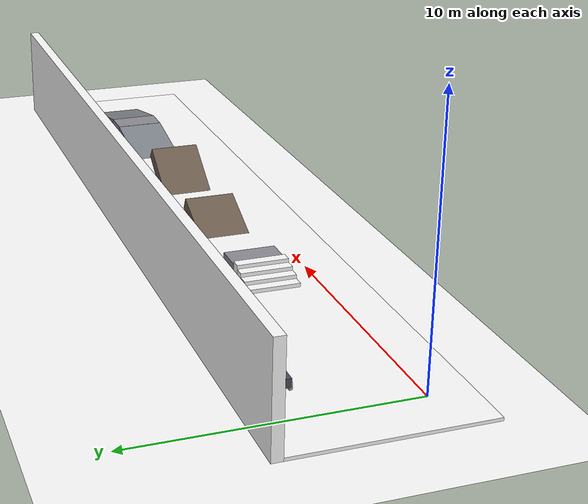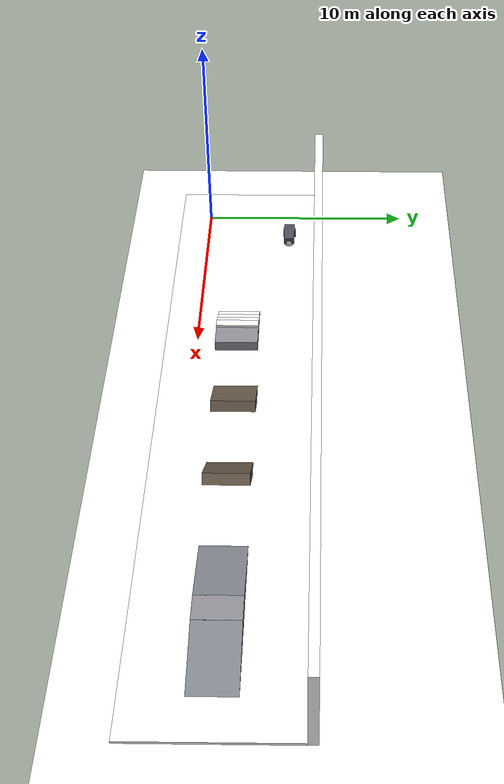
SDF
<sdf version="1.9">
 <world name="semantic_demo">
  <physics name="1ms" type="ignored">
   <max_step_size>0.001</max_step_size>
   <real_time_factor>1.0</real_time_factor>
  </physics>
  <plugin filename="ignition-gazebo-physics-system" name="ignition::gazebo::systems::Physics"/>
  <plugin filename="ignition-gazebo-user-commands-system" name="ignition::gazebo::systems::UserCommands"/>
  <plugin filename="ignition-gazebo-scene-broadcaster-system" name="ignition::gazebo::systems::SceneBroadcaster"/>
  <plugin filename="ignition-gazebo-sensors-system" name="ignition::gazebo::systems::Sensors">
   <render_engine>ogre2</render_engine>
  </plugin>
  <light type="directional" name="sun">
   <pose>0 0 10 0 0 0</pose>
   <diffuse>1.0 1.0 1.0 1</diffuse>
   <specular>0.3 0.3 0.3 1</specular>
   <direction>-0.4 0.2 -0.9</direction>
  </light>
  <light type="directional" name="fill">
   <cast_shadows>false</cast_shadows>
   <pose>0 0 8 0 0 0</pose>
   <diffuse>0.5 0.5 0.5 1</diffuse>
   <direction>0.6 -0.3 -0.7</direction>
  </light>
  <model name="roadway">
   <static>true</static>
   <link name="link">
    <collision name="collision">
     <geometry><plane><normal>0 0 1</normal><size>80 80</size></plane></geometry>
    </collision>
    <visual name="visual">
     <geometry><plane><normal>0 0 1</normal><size>80 80</size></plane></geometry>
     <material>
      <diffuse>1 1 1</diffuse>
      <specular>0.05 0.05 0.05</specular>
      <pbr>
       <metal>
        <albedo_map>@TEXTURES@/asphalt.png</albedo_map>
        <roughness>0.9</roughness>
        <metalness>0.0</metalness>
       </metal>
      </pbr>
     </material>
    </visual>
   </link>
  </model>
  <model name="sidewalk">
   <static>true</static>
   <pose>15.0 2.0 0.06 0 0 0</pose>
   <link name="link">
    <collision name="collision"><geometry><box><size>34.0 7.0 0.12</size></box></geometry></collision>
    <visual name="visual">
     <geometry><box><size>34.0 7.0 0.12</size></box></geometry>
     <material>
      <diffuse>1 1 1</diffuse>
      <specular>0.05 0.05 0.05</specular>
      <pbr>
       <metal>
        <albedo_map>@TEXTURES@/sidewalk.png</albedo_map>
        <roughness>0.9</roughness>
        <metalness>0.0</metalness>
       </metal>
      </pbr>
     </material>
    </visual>
   </link>
  </model>
  <model name="facade">
   <static>true</static>
   <pose>15.0 5.7 2.0 0 0 0</pose>
   <link name="link">
    <collision name="collision"><geometry><box><size>34.0 0.4 4.0</size></box></geometry></collision>
    <visual name="visual">
     <geometry><box><size>34.0 0.4 4.0</size></box></geometry>
     <material>
      <diffuse>1 1 1</diffuse>
      <specular>0.05 0.05 0.05</specular>
      <pbr>
       <metal>
        <albedo_map>@TEXTURES@/facade.png</albedo_map>
        <roughness>0.9</roughness>
        <metalness>0.0</metalness>
       </metal>
      </pbr>
     </material>
    </visual>
   </link>
  </model>
  <model name="stairs">
   <static>true</static>
   <pose>8.2 1.9 0.12 0 0 0</pose>
   <link name="link">
    <collision name="s1">
     <pose>0.2 0 0.075 0 0 0</pose>
     <geometry><box><size>0.4 2.0 0.15</size></box></geometry>
    </collision>
    <visual name="v1">
     <pose>0.2 0 0.075 0 0 0</pose>
     <geometry><box><size>0.4 2.0 0.15</size></box></geometry>
     <material>
      <diffuse>1 1 1</diffuse>
      <pbr>
       <metal>
        <albedo_map>@TEXTURES@/sidewalk.png</albedo_map>
        <roughness>0.9</roughness>
        <metalness>0.0</metalness>
       </metal>
      </pbr>
     </material>
    </visual>
    <collision name="s2">
     <pose>0.6 0 0.150 0 0 0</pose>
     <geometry><box><size>0.4 2.0 0.30</size></box></geometry>
    </collision>
    <visual name="v2">
     <pose>0.6 0 0.150 0 0 0</pose>
     <geometry><box><size>0.4 2.0 0.30</size></box></geometry>
     <material>
      <diffuse>1 1 1</diffuse>
      <pbr>
       <metal>
        <albedo_map>@TEXTURES@/sidewalk.png</albedo_map>
        <roughness>0.9</roughness>
        <metalness>0.0</metalness>
       </metal>
      </pbr>
     </material>
    </visual>
    <collision name="s3">
     <pose>1.0 0 0.225 0 0 0</pose>
     <geometry><box><size>0.4 2.0 0.45</size></box></geometry>
    </collision>
    <visual name="v3">
     <pose>1.0 0 0.225 0 0 0</pose>
     <geometry><box><size>0.4 2.0 0.45</size></box></geometry>
     <material>
      <diffuse>1 1 1</diffuse>
      <pbr>
       <metal>
        <albedo_map>@TEXTURES@/sidewalk.png</albedo_map>
        <roughness>0.9</roughness>
        <metalness>0.0</metalness>
       </metal>
      </pbr>
     </material>
    </visual>
    <collision name="s4">
     <pose>1.4 0 0.300 0 0 0</pose>
     <geometry><box><size>0.4 2.0 0.60</size></box></geometry>
    </collision>
    <visual name="v4">
     <pose>1.4 0 0.300 0 0 0</pose>
     <geometry><box><size>0.4 2.0 0.60</size></box></geometry>
     <material>
      <diffuse>1 1 1</diffuse>
      <pbr>
       <metal>
        <albedo_map>@TEXTURES@/sidewalk.png</albedo_map>
        <roughness>0.9</roughness>
        <metalness>0.0</metalness>
       </metal>
      </pbr>
     </material>
    </visual>
   </link>
  </model>
  <model name="stair_landing">
   <static>true</static>
   <pose>10.35 1.9 0.30 0 0 0</pose>
   <link name="l">
    <collision name="c"><geometry><box><size>1.10 2.0 0.60</size></box></geometry></collision>
    <visual name="v">
     <geometry><box><size>1.10 2.0 0.60</size></box></geometry>
     <material><ambient>0.55 0.55 0.58 1</ambient><diffuse>0.55 0.55 0.58 1</diffuse></material>
    </visual>
   </link>
  </model>
  <model name="slope25">
   <static>true</static>
   <pose>14.500 2.0 0.360 0 -0.4363 0</pose>
   <link name="link">
    <collision name="c"><geometry><box><size>2.207 2.0 0.5</size></box></geometry></collision>
    <visual name="v">
     <geometry><box><size>2.207 2.0 0.5</size></box></geometry>
     <material><ambient>0.30 0.26 0.22 1</ambient><diffuse>0.42 0.36 0.30 1</diffuse></material>
    </visual>
   </link>
  </model>
  <model name="slope35">
   <static>true</static>
   <pose>19.400 2.0 0.615 0 -0.6109 0</pose>
   <link name="link">
    <collision name="c"><geometry><box><size>2.442 2.0 0.5</size></box></geometry></collision>
    <visual name="v">
     <geometry><box><size>2.442 2.0 0.5</size></box></geometry>
     <material><ambient>0.30 0.26 0.22 1</ambient><diffuse>0.42 0.36 0.30 1</diffuse></material>
    </visual>
   </link>
  </model>
  <model name="ramp_up">
   <static>true</static>
   <pose>24.500 2.0 0.175 0 -0.1974 0</pose>
   <link name="l">
    <collision name="c"><geometry><box><size>3.059 2.0 0.5</size></box></geometry></collision>
    <visual name="v">
     <geometry><box><size>3.059 2.0 0.5</size></box></geometry>
     <material><ambient>0.5 0.52 0.55 1</ambient><diffuse>0.5 0.52 0.55 1</diffuse></material>
    </visual>
   </link>
  </model>
  <model name="hill_crest">
   <static>true</static>
   <pose>26.530 2.0 0.360 0 0 0</pose>
   <link name="l">
    <collision name="c"><geometry><box><size>1.18 2.0 0.72</size></box></geometry></collision>
    <visual name="v">
     <geometry><box><size>1.18 2.0 0.72</size></box></geometry>
     <material><ambient>0.55 0.55 0.58 1</ambient><diffuse>0.55 0.55 0.58 1</diffuse></material>
    </visual>
   </link>
  </model>
  <model name="ramp_down">
   <static>true</static>
   <pose>28.560 2.0 0.175 0 0.1974 0</pose>
   <link name="l">
    <collision name="c"><geometry><box><size>3.059 2.0 0.5</size></box></geometry></collision>
    <visual name="v">
     <geometry><box><size>3.059 2.0 0.5</size></box></geometry>
     <material><ambient>0.5 0.52 0.55 1</ambient><diffuse>0.5 0.52 0.55 1</diffuse></material>
    </visual>
   </link>
  </model>
  <model name="robot">
   <pose>2.0 4.2 0.42 0 0 0</pose>
   <link name="base_link">
    <inertial>
     <mass>68.0</mass>
     <inertia><ixx>2.11</ixx><iyy>9.72</iyy><izz>10.67</izz><ixy>0</ixy><ixz>0</ixz><iyz>0</iyz></inertia>
    </inertial>
    <collision name="collision"><geometry><box><size>1.27 0.52 0.32</size></box></geometry></collision>
    <visual name="visual">
     <geometry><box><size>1.27 0.52 0.32</size></box></geometry>
     <material><ambient>0.2 0.2 0.24 1</ambient><diffuse>0.3 0.3 0.36 1</diffuse></material>
    </visual>
    <sensor name="lidar" type="gpu_lidar">
     <pose>0.66 -0.07 0.0 0 0 0</pose>
     <update_rate>10</update_rate>
     <always_on>true</always_on>
     <topic>lidar</topic>
     <lidar>
      <scan>
       <horizontal>
        <samples>720</samples>
        <resolution>1</resolution>
        <min_angle>-3.14159</min_angle>
        <max_angle>3.14159</max_angle>
       </horizontal>
       <vertical>
        <samples>128</samples>
        <resolution>1</resolution>
        <min_angle>-1.0472</min_angle>
        <max_angle>0.5236</max_angle>
       </vertical>
      </scan>
      <range><min>0.15</min><max>20.0</max><resolution>0.01</resolution></range>
     </lidar>
    </sensor>
    <sensor name="lidar_left" type="gpu_lidar">
     <pose>-0.023 0.034 0.189 -0.015359 -0.604931 -1.551598</pose>
     <update_rate>10</update_rate>
     <always_on>true</always_on>
     <topic>lidar_left</topic>
     <lidar>
      <scan>
       <horizontal>
        <samples>240</samples>
        <resolution>1</resolution>
        <min_angle>-3.14159</min_angle>
        <max_angle>3.14159</max_angle>
       </horizontal>
       <vertical>
        <samples>16</samples>
        <resolution>1</resolution>
        <min_angle>-0.1222</min_angle>
        <max_angle>0.9076</max_angle>
       </vertical>
      </scan>
      <range><min>0.10</min><max>20.0</max><resolution>0.01</resolution></range>
     </lidar>
    </sensor>
    <sensor name="lidar_right" type="gpu_lidar">
     <pose>-0.024 -0.180 0.187 0.000000 -0.558505 1.570796</pose>
     <update_rate>10</update_rate>
     <always_on>true</always_on>
     <topic>lidar_right</topic>
     <lidar>
      <scan>
       <horizontal>
        <samples>240</samples>
        <resolution>1</resolution>
        <min_angle>-3.14159</min_angle>
        <max_angle>3.14159</max_angle>
       </horizontal>
       <vertical>
        <samples>16</samples>
        <resolution>1</resolution>
        <min_angle>-0.1222</min_angle>
        <max_angle>0.9076</max_angle>
       </vertical>
      </scan>
      <range><min>0.10</min><max>20.0</max><resolution>0.01</resolution></range>
     </lidar>
    </sensor>
    <sensor name="color" type="camera">
     <pose>0.675 -0.063 0.135 0.0 -0.058 0.047</pose>
     <update_rate>4</update_rate>
     <always_on>true</always_on>
     <topic>color_cam</topic>
     <camera>
      <horizontal_fov>1.5800</horizontal_fov>
      <image><width>640</width><height>360</height><format>R8G8B8</format></image>
      <clip><near>0.10</near><far>20.0</far></clip>
     </camera>
    </sensor>
   </link>
   <link name="left_wheel">
    <pose>-0.35 0.26 -0.16 -1.5707 0 0</pose>
    <inertial>
     <mass>4.0</mass>
     <inertia><ixx>0.119</ixx><iyy>0.119</iyy><izz>0.231</izz><ixy>0</ixy><ixz>0</ixz><iyz>0</iyz></inertia>
    </inertial>
    <collision name="collision">
     <geometry><cylinder><radius>0.25</radius><length>0.10</length></cylinder></geometry>
     <surface><friction><ode><mu>1.0</mu><mu2>1.0</mu2></ode></friction></surface>
    </collision>
    <visual name="visual">
     <geometry><cylinder><radius>0.25</radius><length>0.10</length></cylinder></geometry>
    </visual>
   </link>
   <link name="right_wheel">
    <pose>-0.35 -0.26 -0.16 -1.5707 0 0</pose>
    <inertial>
     <mass>4.0</mass>
     <inertia><ixx>0.119</ixx><iyy>0.119</iyy><izz>0.231</izz><ixy>0</ixy><ixz>0</ixz><iyz>0</iyz></inertia>
    </inertial>
    <collision name="collision">
     <geometry><cylinder><radius>0.25</radius><length>0.10</length></cylinder></geometry>
     <surface><friction><ode><mu>1.0</mu><mu2>1.0</mu2></ode></friction></surface>
    </collision>
    <visual name="visual">
     <geometry><cylinder><radius>0.25</radius><length>0.10</length></cylinder></geometry>
    </visual>
   </link>
   <link name="caster">
    <pose>0.45 0 -0.16 0 0 0</pose>
    <inertial>
     <mass>2.0</mass>
     <inertia><ixx>0.0925</ixx><iyy>0.0925</iyy><izz>0.0925</izz><ixy>0</ixy><ixz>0</ixz><iyz>0</iyz></inertia>
    </inertial>
    <collision name="collision">
     <geometry><sphere><radius>0.25</radius></sphere></geometry>
     <surface><friction><ode><mu>0.05</mu><mu2>0.05</mu2></ode></friction></surface>
    </collision>
    <visual name="visual"><geometry><sphere><radius>0.25</radius></sphere></geometry></visual>
   </link>
   <joint name="left_wheel_joint" type="revolute">
    <parent>base_link</parent>
    <child>left_wheel</child>
    <axis><xyz expressed_in="__model__">0 1 0</xyz><limit><lower>-1e16</lower><upper>1e16</upper></limit></axis>
   </joint>
   <joint name="right_wheel_joint" type="revolute">
    <parent>base_link</parent>
    <child>right_wheel</child>
    <axis><xyz expressed_in="__model__">0 1 0</xyz><limit><lower>-1e16</lower><upper>1e16</upper></limit></axis>
   </joint>
   <joint name="caster_joint" type="ball"><parent>base_link</parent><child>caster</child></joint>
   <plugin filename="ignition-gazebo-odometry-publisher-system" name="ignition::gazebo::systems::OdometryPublisher">
    <odom_frame>odom</odom_frame>
    <robot_base_frame>base_link</robot_base_frame>
    <dimensions>3</dimensions>
    <odom_publish_frequency>50</odom_publish_frequency>
    <odom_topic>/model/robot/odom3d</odom_topic>
    <tf_topic>/model/robot/pose3d</tf_topic>
   </plugin>
   <plugin filename="ignition-gazebo-diff-drive-system" name="ignition::gazebo::systems::DiffDrive">
    <left_joint>left_wheel_joint</left_joint>
    <right_joint>right_wheel_joint</right_joint>
    <wheel_separation>0.52</wheel_separation>
    <wheel_radius>0.25</wheel_radius>
    <odom_publish_frequency>50</odom_publish_frequency>
    <max_linear_acceleration>1.0</max_linear_acceleration>
    <topic>/model/robot/cmd_vel</topic>
    <odom_topic>/model/robot/odometry</odom_topic>
    <tf_topic>/model/robot/tf</tf_topic>
    <frame_id>odom</frame_id>
    <child_frame_id>base_link</child_frame_id>
   </plugin>
  </model>
 </world>
</sdf>
